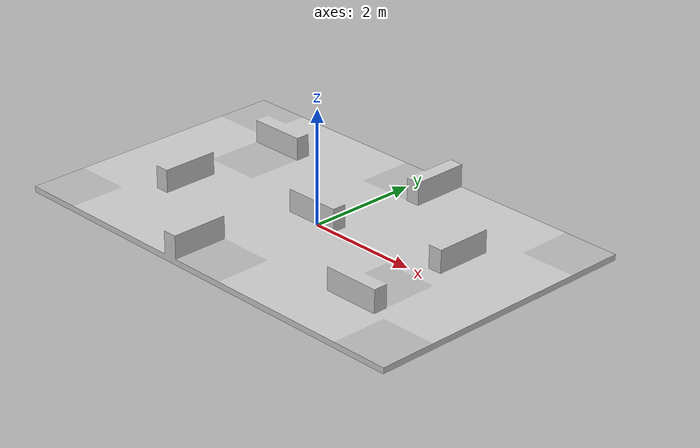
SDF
<?xml version="1.0" ?>
<sdf version="1.6">
  <model name="floor">
    <static>true</static>
    <link name="link">
      <collision name="collision">
        <geometry>
          <mesh>
            <scale>1 1 1</scale>
            <uri>model://floor/meshes/competition_area.stl</uri>
          </mesh>
        </geometry>
      </collision>
      <visual name="visual">
        <geometry>
          <mesh>
            <scale>1 1 1</scale>
            <uri>model://floor/meshes/competition_area.dae</uri>
          </mesh>
        </geometry>
      </visual>
    </link>
  </model>
</sdf>
